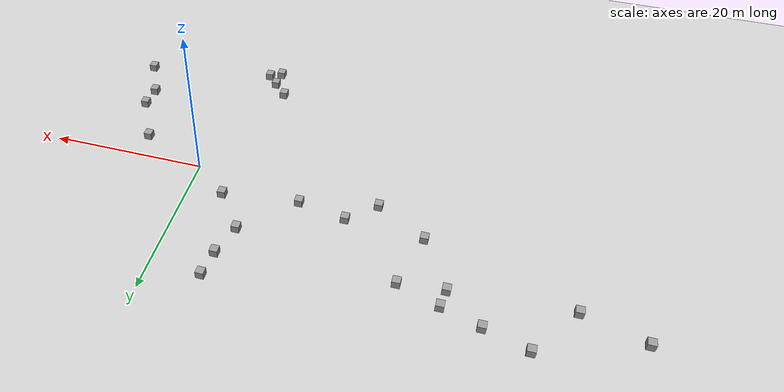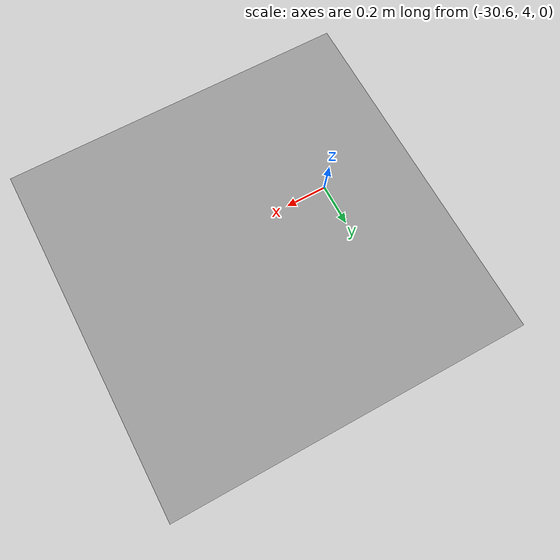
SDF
<sdf version="1.6">
 <world name="default">
  <light name="sun" type="directional">
   <pose>0 0 10 0 -0 0</pose>
   <diffuse>0.8 0.8 0.8 1</diffuse>
   <specular>0.1 0.1 0.1 1</specular>
   <attenuation>
    <range>1000</range>
    <constant>0.9</constant>
    <linear>0.01</linear>
    <quadratic>0.001</quadratic>
   </attenuation>
   <direction>-0.5 0.5 -1</direction>
  </light>
  <model name="ground_plane">
   <static>1</static>
   <link name="link">
    <collision name="collision">
     <geometry><plane><normal>0 0 1</normal><size>100 100</size></plane></geometry>
     <surface><friction><ode><mu>100</mu><mu2>50</mu2></ode></friction></surface>
    </collision>
    <visual name="visual">
     <cast_shadows>0</cast_shadows>
     <geometry><plane><normal>0 0 1</normal><size>100 100</size></plane></geometry>
     <material>
      <script><uri>file://media/materials/scripts/gazebo.material</uri><name>Gazebo/Grey</name></script>
     </material>
    </visual>
   </link>
  </model>
  <gravity>0 0 -9.8</gravity>
  <magnetic_field>6e-06 2.3e-05 -4.2e-05</magnetic_field>
  <atmosphere type="adiabatic"/>
  <physics name="default_physics" default="0" type="ode">
   <max_step_size>0.001</max_step_size>
   <real_time_factor>1</real_time_factor>
   <real_time_update_rate>1000</real_time_update_rate>
  </physics>
  <scene><ambient>0.4 0.4 0.4 1</ambient><background>0.7 0.7 0.7 1</background><shadows>1</shadows></scene>
  <spherical_coordinates>
   <surface_model>EARTH_WGS84</surface_model>
   <latitude_deg>0</latitude_deg>
   <longitude_deg>0</longitude_deg>
   <elevation>0</elevation>
   <heading_deg>0</heading_deg>
  </spherical_coordinates>
  <model name="unit_box_0">
   <pose>-4.50731 3.88276 0.499995 0 1e-05 0</pose>
   <link name="link">
    <inertial>
     <mass>1</mass>
     <inertia>
      <ixx>0.166667</ixx>
      <ixy>0</ixy>
      <ixz>0</ixz>
      <iyy>0.166667</iyy>
      <iyz>0</iyz>
      <izz>0.166667</izz>
     </inertia>
    </inertial>
    <collision name="collision"><geometry><box><size>1 1 1</size></box></geometry></collision>
    <visual name="visual">
     <geometry><box><size>1 1 1</size></box></geometry>
     <material>
      <script><name>Gazebo/Grey</name><uri>file://media/materials/scripts/gazebo.material</uri></script>
     </material>
    </visual>
   </link>
  </model>
  <model name="unit_box_1">
   <pose>-8.04149 8.79884 0.499995 -1e-05 0 0</pose>
   <link name="link">
    <inertial>
     <mass>1</mass>
     <inertia>
      <ixx>0.166667</ixx>
      <ixy>0</ixy>
      <ixz>0</ixz>
      <iyy>0.166667</iyy>
      <iyz>0</iyz>
      <izz>0.166667</izz>
     </inertia>
    </inertial>
    <collision name="collision"><geometry><box><size>1 1 1</size></box></geometry></collision>
    <visual name="visual">
     <geometry><box><size>1 1 1</size></box></geometry>
     <material>
      <script><name>Gazebo/Grey</name><uri>file://media/materials/scripts/gazebo.material</uri></script>
     </material>
    </visual>
   </link>
  </model>
  <model name="unit_box_2">
   <pose>-6.85224 12.9898 0.499995 0 1e-05 0</pose>
   <link name="link">
    <inertial>
     <mass>1</mass>
     <inertia>
      <ixx>0.166667</ixx>
      <ixy>0</ixy>
      <ixz>0</ixz>
      <iyy>0.166667</iyy>
      <iyz>0</iyz>
      <izz>0.166667</izz>
     </inertia>
    </inertial>
    <collision name="collision"><geometry><box><size>1 1 1</size></box></geometry></collision>
    <visual name="visual">
     <geometry><box><size>1 1 1</size></box></geometry>
     <material>
      <script><name>Gazebo/Grey</name><uri>file://media/materials/scripts/gazebo.material</uri></script>
     </material>
    </visual>
   </link>
  </model>
  <model name="unit_box_3">
   <pose>-6.44878 16.4435 0.499995 -1e-05 0 0</pose>
   <link name="link">
    <inertial>
     <mass>1</mass>
     <inertia>
      <ixx>0.166667</ixx>
      <ixy>0</ixy>
      <ixz>0</ixz>
      <iyy>0.166667</iyy>
      <iyz>0</iyz>
      <izz>0.166667</izz>
     </inertia>
    </inertial>
    <collision name="collision"><geometry><box><size>1 1 1</size></box></geometry></collision>
    <visual name="visual">
     <geometry><box><size>1 1 1</size></box></geometry>
     <material>
      <script><name>Gazebo/Grey</name><uri>file://media/materials/scripts/gazebo.material</uri></script>
     </material>
    </visual>
   </link>
  </model>
  <model name="unit_box_4">
   <pose>-14.1238 2.72085 0.499995 0 1e-05 0</pose>
   <link name="link">
    <inertial>
     <mass>1</mass>
     <inertia>
      <ixx>0.166667</ixx>
      <ixy>0</ixy>
      <ixz>0</ixz>
      <iyy>0.166667</iyy>
      <iyz>0</iyz>
      <izz>0.166667</izz>
     </inertia>
    </inertial>
    <collision name="collision"><geometry><box><size>1 1 1</size></box></geometry></collision>
    <visual name="visual">
     <geometry><box><size>1 1 1</size></box></geometry>
     <material>
      <script><name>Gazebo/Grey</name><uri>file://media/materials/scripts/gazebo.material</uri></script>
     </material>
    </visual>
   </link>
  </model>
  <model name="unit_box_5">
   <pose>-20.2225 3.88835 0.499995 -1e-05 0 0</pose>
   <link name="link">
    <inertial>
     <mass>1</mass>
     <inertia>
      <ixx>0.166667</ixx>
      <ixy>0</ixy>
      <ixz>0</ixz>
      <iyy>0.166667</iyy>
      <iyz>0</iyz>
      <izz>0.166667</izz>
     </inertia>
    </inertial>
    <collision name="collision"><geometry><box><size>1 1 1</size></box></geometry></collision>
    <visual name="visual">
     <geometry><box><size>1 1 1</size></box></geometry>
     <material>
      <script><name>Gazebo/Grey</name><uri>file://media/materials/scripts/gazebo.material</uri></script>
     </material>
    </visual>
   </link>
  </model>
  <model name="unit_box_6">
   <pose>-23.7086 0.739794 0.499995 0 1e-05 0</pose>
   <link name="link">
    <inertial>
     <mass>1</mass>
     <inertia>
      <ixx>0.166667</ixx>
      <ixy>0</ixy>
      <ixz>0</ixz>
      <iyy>0.166667</iyy>
      <iyz>0</iyz>
      <izz>0.166667</izz>
     </inertia>
    </inertial>
    <collision name="collision"><geometry><box><size>1 1 1</size></box></geometry></collision>
    <visual name="visual">
     <geometry><box><size>1 1 1</size></box></geometry>
     <material>
      <script><name>Gazebo/Grey</name><uri>file://media/materials/scripts/gazebo.material</uri></script>
     </material>
    </visual>
   </link>
  </model>
  <model name="unit_box_7">
   <pose>-30.0076 4.43963 0.499995 -1e-05 0 0</pose>
   <link name="link">
    <inertial>
     <mass>1</mass>
     <inertia>
      <ixx>0.166667</ixx>
      <ixy>0</ixy>
      <ixz>0</ixz>
      <iyy>0.166667</iyy>
      <iyz>0</iyz>
      <izz>0.166667</izz>
     </inertia>
    </inertial>
    <collision name="collision"><geometry><box><size>1 1 1</size></box></geometry></collision>
    <visual name="visual">
     <geometry><box><size>1 1 1</size></box></geometry>
     <material>
      <script><name>Gazebo/Grey</name><uri>file://media/materials/scripts/gazebo.material</uri></script>
     </material>
    </visual>
   </link>
  </model>
  <model name="unit_box_8">
   <pose>-33.7175 11.1842 0.499995 1e-05 -0 0</pose>
   <link name="link">
    <inertial>
     <mass>1</mass>
     <inertia>
      <ixx>0.166667</ixx>
      <ixy>0</ixy>
      <ixz>0</ixz>
      <iyy>0.166667</iyy>
      <iyz>0</iyz>
      <izz>0.166667</izz>
     </inertia>
    </inertial>
    <collision name="collision"><geometry><box><size>1 1 1</size></box></geometry></collision>
    <visual name="visual">
     <geometry><box><size>1 1 1</size></box></geometry>
     <material>
      <script><name>Gazebo/Grey</name><uri>file://media/materials/scripts/gazebo.material</uri></script>
     </material>
    </visual>
   </link>
  </model>
  <model name="unit_box_9">
   <pose>-48.1741 10.2697 0.499995 0 1e-05 0</pose>
   <link name="link">
    <inertial>
     <mass>1</mass>
     <inertia>
      <ixx>0.166667</ixx>
      <ixy>0</ixy>
      <ixz>0</ixz>
      <iyy>0.166667</iyy>
      <iyz>0</iyz>
      <izz>0.166667</izz>
     </inertia>
    </inertial>
    <collision name="collision"><geometry><box><size>1 1 1</size></box></geometry></collision>
    <visual name="visual">
     <geometry><box><size>1 1 1</size></box></geometry>
     <material>
      <script><name>Gazebo/Grey</name><uri>file://media/materials/scripts/gazebo.material</uri></script>
     </material>
    </visual>
   </link>
  </model>
  <model name="unit_box_10">
   <pose>-55.6622 12.4347 0.499995 1e-05 -0 0</pose>
   <link name="link">
    <inertial>
     <mass>1</mass>
     <inertia>
      <ixx>0.166667</ixx>
      <ixy>0</ixy>
      <ixz>0</ixz>
      <iyy>0.166667</iyy>
      <iyz>0</iyz>
      <izz>0.166667</izz>
     </inertia>
    </inertial>
    <collision name="collision"><geometry><box><size>1 1 1</size></box></geometry></collision>
    <visual name="visual">
     <geometry><box><size>1 1 1</size></box></geometry>
     <material>
      <script><name>Gazebo/Grey</name><uri>file://media/materials/scripts/gazebo.material</uri></script>
     </material>
    </visual>
   </link>
  </model>
  <model name="unit_box_11">
   <pose>-43.5338 16.6834 0.499995 -1e-05 0 0</pose>
   <link name="link">
    <inertial>
     <mass>1</mass>
     <inertia>
      <ixx>0.166667</ixx>
      <ixy>0</ixy>
      <ixz>0</ixz>
      <iyy>0.166667</iyy>
      <iyz>0</iyz>
      <izz>0.166667</izz>
     </inertia>
    </inertial>
    <collision name="collision"><geometry><box><size>1 1 1</size></box></geometry></collision>
    <visual name="visual">
     <geometry><box><size>1 1 1</size></box></geometry>
     <material>
      <script><name>Gazebo/Grey</name><uri>file://media/materials/scripts/gazebo.material</uri></script>
     </material>
    </visual>
   </link>
  </model>
  <model name="unit_box_12">
   <pose>-38.1571 15.0928 0.499995 0 1e-05 0</pose>
   <link name="link">
    <inertial>
     <mass>1</mass>
     <inertia>
      <ixx>0.166667</ixx>
      <ixy>0</ixy>
      <ixz>0</ixz>
      <iyy>0.166667</iyy>
      <iyz>0</iyz>
      <izz>0.166667</izz>
     </inertia>
    </inertial>
    <collision name="collision"><geometry><box><size>1 1 1</size></box></geometry></collision>
    <visual name="visual">
     <geometry><box><size>1 1 1</size></box></geometry>
     <material>
      <script><name>Gazebo/Grey</name><uri>file://media/materials/scripts/gazebo.material</uri></script>
     </material>
    </visual>
   </link>
  </model>
  <model name="unit_box_13">
   <pose>-33.3705 13.5813 0.499995 -1e-05 0 0</pose>
   <link name="link">
    <inertial>
     <mass>1</mass>
     <inertia>
      <ixx>0.166667</ixx>
      <ixy>0</ixy>
      <ixz>0</ixz>
      <iyy>0.166667</iyy>
      <iyz>0</iyz>
      <izz>0.166667</izz>
     </inertia>
    </inertial>
    <collision name="collision"><geometry><box><size>1 1 1</size></box></geometry></collision>
    <visual name="visual">
     <geometry><box><size>1 1 1</size></box></geometry>
     <material>
      <script><name>Gazebo/Grey</name><uri>file://media/materials/scripts/gazebo.material</uri></script>
     </material>
    </visual>
   </link>
  </model>
  <model name="unit_box_14">
   <pose>-28.1153 11.7076 0.499995 0 1e-05 0</pose>
   <link name="link">
    <inertial>
     <mass>1</mass>
     <inertia>
      <ixx>0.166667</ixx>
      <ixy>0</ixy>
      <ixz>0</ixz>
      <iyy>0.166667</iyy>
      <iyz>0</iyz>
      <izz>0.166667</izz>
     </inertia>
    </inertial>
    <collision name="collision"><geometry><box><size>1 1 1</size></box></geometry></collision>
    <visual name="visual">
     <geometry><box><size>1 1 1</size></box></geometry>
     <material>
      <script><name>Gazebo/Grey</name><uri>file://media/materials/scripts/gazebo.material</uri></script>
     </material>
    </visual>
   </link>
  </model>
  <model name="unit_box_15">
   <pose>8.5058 -3.54677 0.499995 -1e-05 0 0</pose>
   <link name="link">
    <inertial>
     <mass>1</mass>
     <inertia>
      <ixx>0.166667</ixx>
      <ixy>0</ixy>
      <ixz>0</ixz>
      <iyy>0.166667</iyy>
      <iyz>0</iyz>
      <izz>0.166667</izz>
     </inertia>
    </inertial>
    <collision name="collision"><geometry><box><size>1 1 1</size></box></geometry></collision>
    <visual name="visual">
     <geometry><box><size>1 1 1</size></box></geometry>
     <material>
      <script><name>Gazebo/Grey</name><uri>file://media/materials/scripts/gazebo.material</uri></script>
     </material>
    </visual>
   </link>
  </model>
  <model name="unit_box_16">
   <pose>11.5614 -9.55682 0.499995 0 1e-05 0</pose>
   <link name="link">
    <inertial>
     <mass>1</mass>
     <inertia>
      <ixx>0.166667</ixx>
      <ixy>0</ixy>
      <ixz>0</ixz>
      <iyy>0.166667</iyy>
      <iyz>0</iyz>
      <izz>0.166667</izz>
     </inertia>
    </inertial>
    <collision name="collision"><geometry><box><size>1 1 1</size></box></geometry></collision>
    <visual name="visual">
     <geometry><box><size>1 1 1</size></box></geometry>
     <material>
      <script><name>Gazebo/Grey</name><uri>file://media/materials/scripts/gazebo.material</uri></script>
     </material>
    </visual>
   </link>
  </model>
  <model name="unit_box_17">
   <pose>11.3828 -12.4261 0.499995 -1e-05 0 0</pose>
   <link name="link">
    <inertial>
     <mass>1</mass>
     <inertia>
      <ixx>0.166667</ixx>
      <ixy>0</ixy>
      <ixz>0</ixz>
      <iyy>0.166667</iyy>
      <iyz>0</iyz>
      <izz>0.166667</izz>
     </inertia>
    </inertial>
    <collision name="collision"><geometry><box><size>1 1 1</size></box></geometry></collision>
    <visual name="visual">
     <geometry><box><size>1 1 1</size></box></geometry>
     <material>
      <script><name>Gazebo/Grey</name><uri>file://media/materials/scripts/gazebo.material</uri></script>
     </material>
    </visual>
   </link>
  </model>
  <model name="unit_box_18">
   <pose>13.6197 -17.3422 0.499995 0 1e-05 0</pose>
   <link name="link">
    <inertial>
     <mass>1</mass>
     <inertia>
      <ixx>0.166667</ixx>
      <ixy>0</ixy>
      <ixz>0</ixz>
      <iyy>0.166667</iyy>
      <iyz>0</iyz>
      <izz>0.166667</izz>
     </inertia>
    </inertial>
    <collision name="collision"><geometry><box><size>1 1 1</size></box></geometry></collision>
    <visual name="visual">
     <geometry><box><size>1 1 1</size></box></geometry>
     <material>
      <script><name>Gazebo/Grey</name><uri>file://media/materials/scripts/gazebo.material</uri></script>
     </material>
    </visual>
   </link>
  </model>
  <model name="unit_box_19">
   <pose>-3.26689 -19.9611 0.499995 -1e-05 0 0</pose>
   <link name="link">
    <inertial>
     <mass>1</mass>
     <inertia>
      <ixx>0.166667</ixx>
      <ixy>0</ixy>
      <ixz>0</ixz>
      <iyy>0.166667</iyy>
      <iyz>0</iyz>
      <izz>0.166667</izz>
     </inertia>
    </inertial>
    <collision name="collision"><geometry><box><size>1 1 1</size></box></geometry></collision>
    <visual name="visual">
     <geometry><box><size>1 1 1</size></box></geometry>
     <material>
      <script><name>Gazebo/Grey</name><uri>file://media/materials/scripts/gazebo.material</uri></script>
     </material>
    </visual>
   </link>
  </model>
  <model name="unit_box_20">
   <pose>-4.7695 -20.7147 0.499995 0 1e-05 0</pose>
   <link name="link">
    <inertial>
     <mass>1</mass>
     <inertia>
      <ixx>0.166667</ixx>
      <ixy>0</ixy>
      <ixz>0</ixz>
      <iyy>0.166667</iyy>
      <iyz>0</iyz>
      <izz>0.166667</izz>
     </inertia>
    </inertial>
    <collision name="collision"><geometry><box><size>1 1 1</size></box></geometry></collision>
    <visual name="visual">
     <geometry><box><size>1 1 1</size></box></geometry>
     <material>
      <script><name>Gazebo/Grey</name><uri>file://media/materials/scripts/gazebo.material</uri></script>
     </material>
    </visual>
   </link>
  </model>
  <model name="unit_box_21">
   <pose>-4.6135 -18.4133 0.499995 -1e-05 0 0</pose>
   <link name="link">
    <inertial>
     <mass>1</mass>
     <inertia>
      <ixx>0.166667</ixx>
      <ixy>0</ixy>
      <ixz>0</ixz>
      <iyy>0.166667</iyy>
      <iyz>0</iyz>
      <izz>0.166667</izz>
     </inertia>
    </inertial>
    <collision name="collision"><geometry><box><size>1 1 1</size></box></geometry></collision>
    <visual name="visual">
     <geometry><box><size>1 1 1</size></box></geometry>
     <material>
      <script><name>Gazebo/Grey</name><uri>file://media/materials/scripts/gazebo.material</uri></script>
     </material>
    </visual>
   </link>
  </model>
  <model name="unit_box_22">
   <pose>-6.37133 -16.5022 0.5 0 -0 0</pose>
   <link name="link">
    <inertial>
     <mass>1</mass>
     <inertia>
      <ixx>0.166667</ixx>
      <ixy>0</ixy>
      <ixz>0</ixz>
      <iyy>0.166667</iyy>
      <iyz>0</iyz>
      <izz>0.166667</izz>
     </inertia>
    </inertial>
    <collision name="collision"><geometry><box><size>1 1 1</size></box></geometry></collision>
    <visual name="visual">
     <geometry><box><size>1 1 1</size></box></geometry>
     <material>
      <script><name>Gazebo/Grey</name><uri>file://media/materials/scripts/gazebo.material</uri></script>
     </material>
    </visual>
   </link>
  </model>
 </world>
</sdf>
